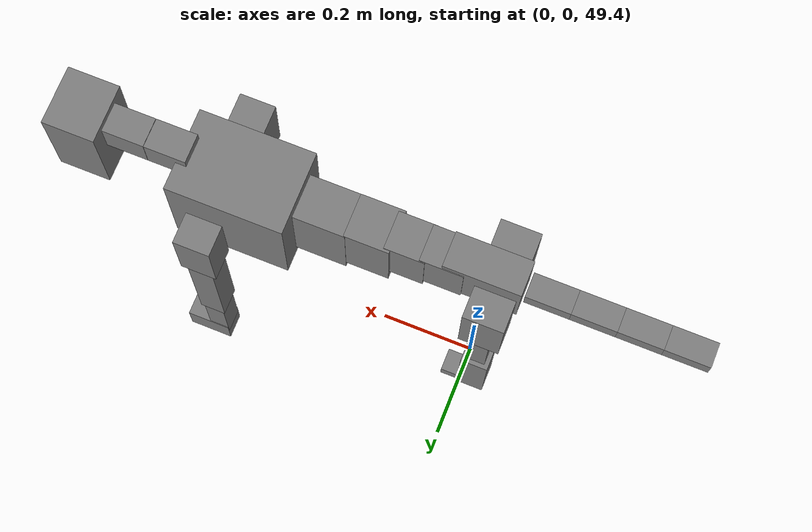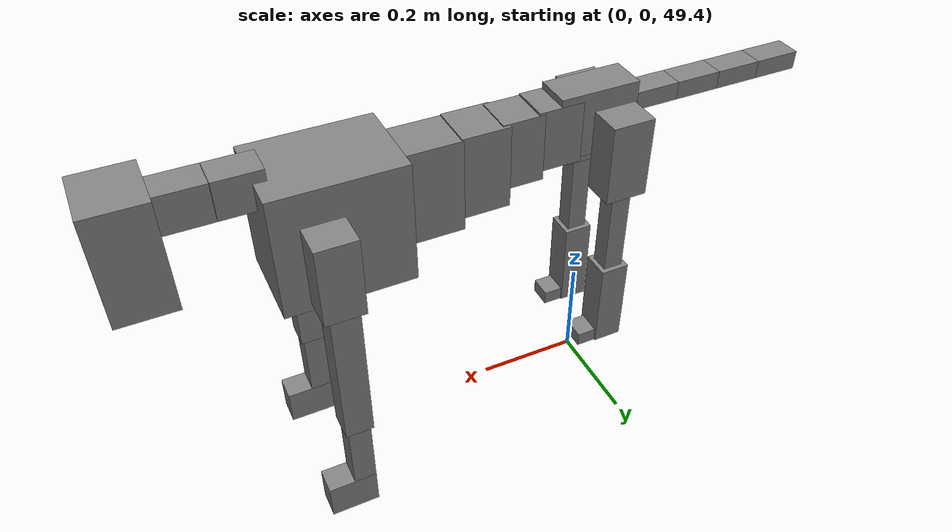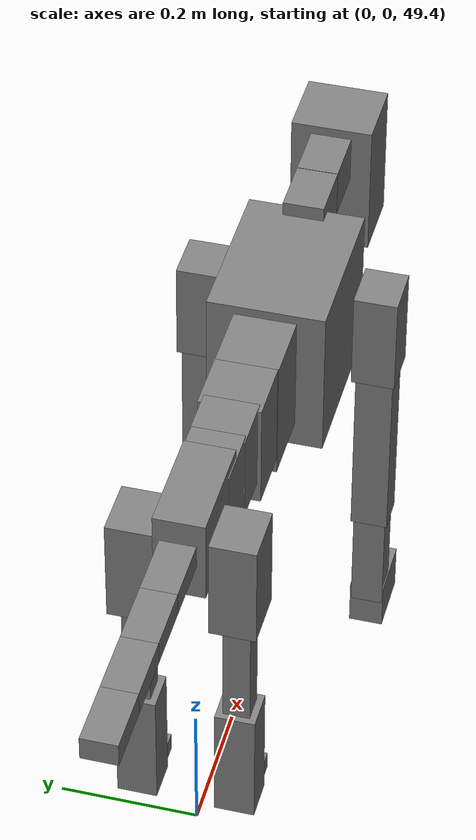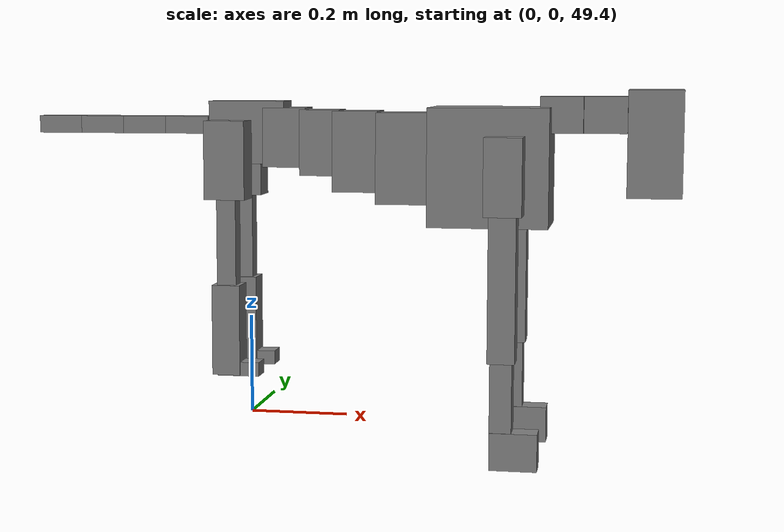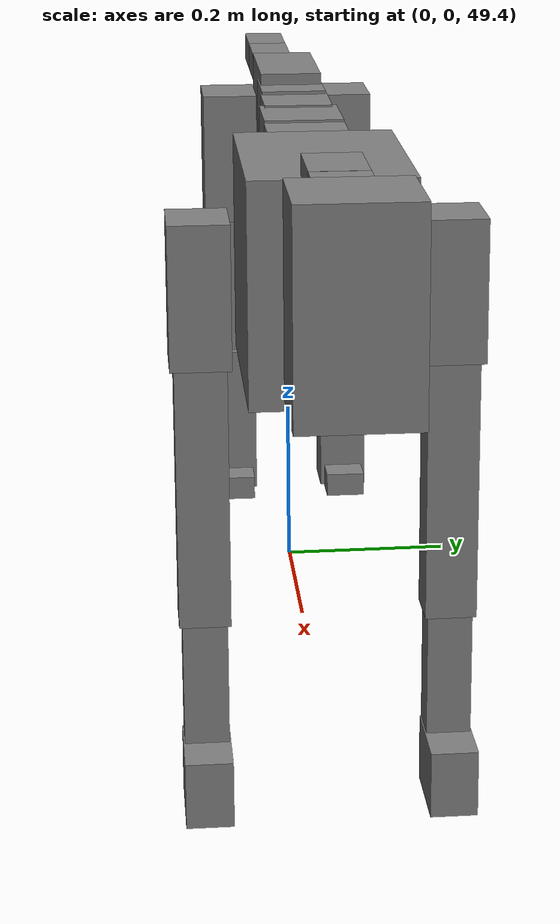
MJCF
<mujoco model="dog">

    <default>
        <joint armature="0.02" stiffness="1" damping="0.2" limited="true"/>
        <geom condim="3" friction="1 0.05 0.05" margin="0.01"/>
        <motor ctrllimited="true" ctrlrange="-1.0 1.0" forcelimited="true" gear="50"/>
    </default>

    <compiler inertiafromgeom="true" angle="radian"/>

    <option timestep="0.016" iterations="50" tolerance="1e-10" solver="Newton" jacobian="dense" cone="pyramidal"/>

    <size nconmax="20000" njmax="60000" nstack="5000000"/>
    <visual>
        <map force="0.1" zfar="30"/>
        <rgba haze="0.15 0.25 0.35 1"/>
        <quality shadowsize="2048"/>
        <global offwidth="800" offheight="800"/>
    </visual>

    <asset>
        <texture type="skybox" builtin="gradient" rgb1="0.3 0.5 0.7" rgb2="0 0 0" width="512" height="512"/>
        <texture name="texplane" type="2d" builtin="checker" rgb1=".2 .3 .4" rgb2=".1 0.15 0.2" width="512" height="512"
                 mark="cross" markrgb=".8 .8 .8"/>
        <texture name="texgeom" type="cube" builtin="flat" mark="cross" width="127" height="1278" rgb1="0.8 0.6 0.4"
                 rgb2="0.8 0.6 0.4" markrgb="1 1 1" random="0.01"/>

        <material name="matplane" reflectance="0.3" texture="texplane" texrepeat="1 1" texuniform="true"/>
        <material name="matgeom" texture="texgeom" texuniform="true" rgba="0.8 0.6 .4 1"/>
    </asset>

    <worldbody>
        <geom name="floor" pos="0 0 0" size="0 0 .25" type="plane" material="matplane" condim="3"/>

        <light directional="false" diffuse=".2 .2 .2" specular="0 0 0" pos="0 0 5" dir="0 0 -1" castshadow="false"/>
        <light mode="targetbodycom" target="torso" directional="false" diffuse=".8 .8 .8" specular="0.3 0.3 0.3"
               pos="0 0 4.0" dir="0 0 -1"/>

        <body name="root" pos="0 0 50">
            <freejoint name="root_1"/>
            <geom type="box" pos="0 0 -0.02" size="0.0774  0.0358  0.063" density="2030"/>

            <body name="spine1" pos="0.054 0 0">
                <joint name="spine1_y" axis="0 1 0" range="0 0.7" limited="true"/>
                <geom type="box" pos="0.02375 0 -0.03" size="0.04375  0.0375  0.05985" density="2030"/>

                <body name="spine2" pos="0.0612 0 0">
                    <joint name="spine2_y" axis="0 1 0" range="-0.15 0.15" limited="true"/>
                    <geom type="box" pos="0.03555  0  -0.04" size="0.04055  0.039  0.06615" density="2030"/>

                    <body name="spine3" pos="0.0730 0 0">
                        <joint name="spine3_y" axis="0 1 0" range="-0.15 0.15" limited="true"/>
                        <geom type="box" pos="0.03555  0  -0.057" size="0.04555  0.0445  0.081" density="2030"/>

                        <body name="spine4" pos="0.0780 0 0">
                            <joint name="spine4_y" axis="0 1 0" range="-0.15 0.15" limited="true"/>
                            <geom type="box" pos="0.05265  0  -0.07" size="0.05265  0.045  0.09135" density="2030"/>

                            <body name="torso" pos="0.1082 0 0">
                                <joint name="torso_y" axis="0 1 0" range="-0.15 0.15" limited="true"/>
                                <geom type="box" pos="0.11925  0  -0.085" size="0.11925  0.085  0.11745"
                                      density="2030"/>

                                <body name="neck1" pos="0.2160  0   0.0180">
                                    <joint name="neck1_y" axis="0 1 0" range="-1.2  -1" limited="true"/>
                                    <geom type="box" pos="0.0423  0  0" size="0.0423  0.03  0.036" density="2325"/>

                                    <body name="neck2" pos="0.0853  0  0">
                                        <joint name="neck2_y" axis="0 1 0" range="0.1  0" limited="true"/>
                                        <geom type="box" pos="0.0423  0  0" size="0.0423  0.03  0.036" density="2325"/>

                                        <body name="head" pos="0.0853  0  0">
                                            <joint name="head_y" axis="0 1 0" range="-0.3  -0.2" limited="true"/>
                                            <geom type="box" pos="0.0531  0  -0.055" size="0.0531  0.06  0.1044"
                                                  density="4030"/>

                                        </body>
                                    </body>
                                </body>

                                <body name="front_shoulder" pos="0.156  0   -0.0480">
                                    <joint name="front_shoulder_y" axis="0 1 0" range="-1 1.5" limited="true"/>
                                    <geom type="box" pos="0 0.13 -0.0494" size="0.0371  0.0317  0.0760" density="1158"/>
                                    <geom type="box" pos="0 -0.13 -0.0494" size="0.0371  0.0317  0.0760"
                                          density="1158"/>

                                    <body name="front_elbow" pos="0  0  -0.0987">
                                        <joint name="front_elbow_y" axis="0 1 0" range="-2 0" limited="true"/>
                                        <geom type="box" pos="0 0.13 -0.1552" size="0.0267  0.0273  0.1552"
                                              density="1081"/>
                                        <geom type="box" pos="0 -0.13 -0.1552" size="0.0267  0.0273  0.1552"
                                              density="1081"/>

                                        <body name="front_wrist" pos="0  0  -0.3105">
                                            <joint name="front_wrist_y" axis="0 1 0" range="-0.2 0" limited="true"/>
                                            <geom type="box" pos="0 0.13 -0.0754" size="0.0215  0.0239  0.0886"
                                                  density="1664"/>
                                            <geom type="box" pos="0 -0.13 -0.0754" size="0.0215  0.0239  0.0886"
                                                  density="1664"/>

                                            <body name="front_finger_end" pos="0  0  -0.1508">
                                                <joint name="front_finger_y" axis="0 1 0" range="-0.4 1"
                                                       limited="true"/>
                                                <geom type="box" pos="0.0254  0.13  -0.0220"
                                                      size="0.0466  0.0254  0.0370" density="1515"/>
                                                <geom type="box" pos="0.0254  -0.13  -0.0220"
                                                      size="0.0466  0.0254  0.0370" density="1515"/>

                                            </body>

                                        </body>
                                    </body>
                                </body>

                            </body>
                        </body>
                    </body>
                </body>
            </body>

            <body name="back_hip" pos="-0.03 0 -0.018">
                <joint name="back_hip_y" axis="0 1 0" range="-1.5 0.3" limited="true"/>
                <geom type="box" pos="0 0.07 -0.0559" size="0.0412  0.0324  0.0787" density="1154"/>
                <geom type="box" pos="0 -0.07 -0.0559" size="0.0412  0.0324  0.0787" density="1154"/>

                <body name="back_knee" pos="0  0  -0.1117">
                    <joint name="back_knee_y" axis="0 1 0" range="0 2.8" limited="true"/>
                    <geom type="box" pos="0 0.07 -0.1033" size="0.0194  0.0191  0.1188" density="1227"/>
                    <geom type="box" pos="0 -0.07 -0.1033" size="0.0194  0.0191  0.1188" density="1227"/>

                    <body name="back_ankle" pos="0  0  -0.2066">
                        <joint name="back_ankle_y" axis="0 1 0" range="-2.2 0" limited="true"/>
                        <geom type="box" pos="0 0.07 -0.0800" size="0.0284  0.0284  0.0912" density="1284"/>
                        <geom type="box" pos="0 -0.07 -0.0800" size="0.0284  0.0284  0.0912" density="1284"/>

                        <body name="back_toe_end" pos="0  0  -0.1599">
                            <joint name="back_toe_y" axis="0 1 0" range="-0.4 1" limited="true"/>
                            <geom type="box" pos="0.0234  0.07  0.0008" size="0.0429  0.0234  0.0142" density="1515"/>
                            <geom type="box" pos="0.0234  -0.07  0.0008" size="0.0429  0.0234  0.0142" density="1515"/>

                        </body>
                    </body>
                </body>
            </body>

            <body name="tail1" pos="-0.074 0 -0.006">
                <joint name="tail1_y" axis="0 1 0" range="-0.2 0.2" limited="true"/>
                <geom type="box" pos="-0.0536  0  0" size="0.045  0.025  0.0175" density="1587"/>

                <body name="tail2" pos="-0.09 0 0">
                    <joint name="tail2_y" axis="0 1 0" range="-0.2 0.2" limited="true"/>
                    <geom type="box" pos="-0.0536  0  0" size="0.045  0.025  0.0175" density="1587"/>

                    <body name="tail3" pos="-0.09 0 0">
                        <joint name="tail3_y" axis="0 1 0" range="-0.2 0.2" limited="true"/>
                        <geom type="box" pos="-0.0536  0  0" size="0.045  0.025  0.0175" density="1587"/>

                        <body name="tail4" pos="-0.09 0 0">
                            <joint name="tail4_y" axis="0 1 0" range="-0.2 0.2" limited="true"/>
                            <geom type="box" pos="-0.0536  0  0" size="0.045  0.025  0.0175" density="1587"/>

                        </body>
                    </body>
                </body>
            </body>
        </body>
    </worldbody>

    <actuator>
        <motor joint="spine1_y" forcerange="-150 150     "/>
        <motor joint="spine2_y" forcerange="-150 150     "/>
        <motor joint="spine3_y" forcerange="-150 150     "/>
        <motor joint="spine4_y" forcerange="-150 150     "/>
        <motor joint="torso_y" forcerange="-150 150     "/>
        <motor joint="neck1_y" forcerange="-100 100       "/>
        <motor joint="neck2_y" forcerange="-100 100       "/>
        <motor joint="head_y" forcerange="-150 150       "/>
        <motor joint="front_shoulder_y" forcerange="-157.95 153.68"/>
        <motor joint="front_elbow_y" forcerange="-124.54 173.89"/>
        <motor joint="front_wrist_y" forcerange="-115.13 76.36"/>
        <motor joint="front_finger_y" forcerange="-27.93 67.67"/>
        <motor joint="back_hip_y" forcerange="-362.15 269.21"/>
        <motor joint="back_knee_y" forcerange="-242.46 235.72"/>
        <motor joint="back_angle_y" forcerange="-230.39 123.40"/>
        <motor joint="back_toe_y" forcerange="-45.50 61.64"/>
        <motor joint="tail1_y" forcerange="-50 50     "/>
        <motor joint="tail2_y" forcerange="-50 50     "/>
        <motor joint="tail3_y" forcerange="-50 50     "/>
        <motor joint="tail4_y" forcerange="-50 50     "/>
    </actuator>
</mujoco>
